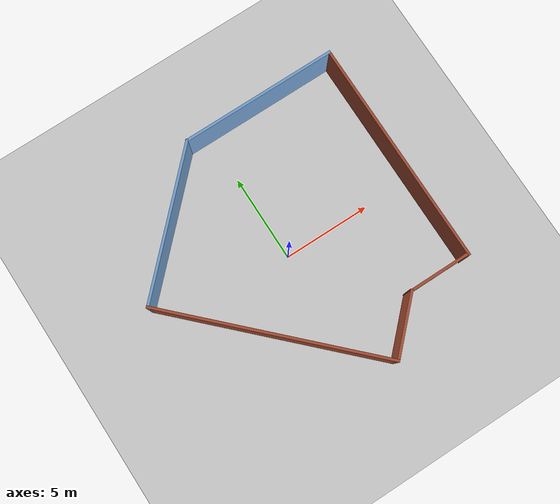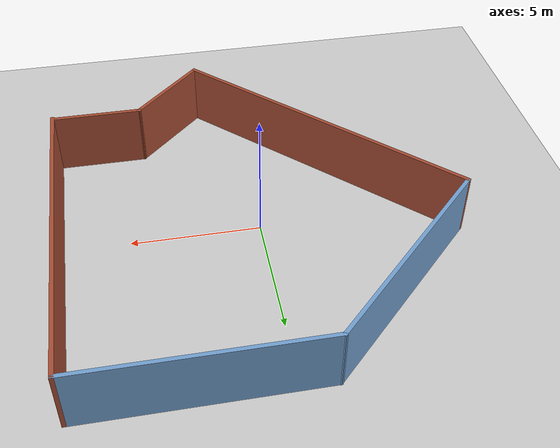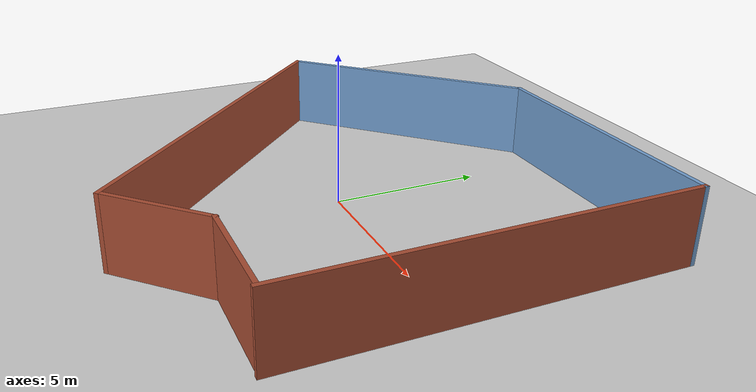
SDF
<sdf version="1.7">
 <world name="default">
  <light name="sun" type="directional">
   <pose>0 0 10 0 -0 0</pose>
   <diffuse>0.8 0.8 0.8 1</diffuse>
   <specular>0.2 0.2 0.2 1</specular>
   <attenuation>
    <range>1000</range>
    <constant>0.9</constant>
    <linear>0.01</linear>
    <quadratic>0.001</quadratic>
   </attenuation>
   <direction>-0.5 0.1 -0.9</direction>
   <spot><inner_angle>0</inner_angle><outer_angle>0</outer_angle><falloff>0</falloff></spot>
  </light>
  <model name="ground_plane">
   <static>1</static>
   <link name="link">
    <collision name="collision">
     <geometry><plane><normal>0 0 1</normal><size>100 100</size></plane></geometry>
     <surface><friction><ode><mu>100</mu><mu2>50</mu2></ode></friction></surface>
    </collision>
    <visual name="visual">
     <cast_shadows>0</cast_shadows>
     <geometry><plane><normal>0 0 1</normal><size>100 100</size></plane></geometry>
     <material>
      <script><uri>file://media/materials/scripts/gazebo.material</uri><name>Gazebo/Grey</name></script>
     </material>
    </visual>
   </link>
  </model>
  <gravity>0 0 -9.8</gravity>
  <magnetic_field>6e-06 2.3e-05 -4.2e-05</magnetic_field>
  <atmosphere type="adiabatic"/>
  <physics type="ode">
   <max_step_size>0.001</max_step_size>
   <real_time_factor>1</real_time_factor>
   <real_time_update_rate>1000</real_time_update_rate>
  </physics>
  <scene><ambient>0.4 0.4 0.4 1</ambient><background>0.7 0.7 0.7 1</background><shadows>1</shadows></scene>
  <spherical_coordinates>
   <surface_model>EARTH_WGS84</surface_model>
   <latitude_deg>0</latitude_deg>
   <longitude_deg>0</longitude_deg>
   <elevation>0</elevation>
   <heading_deg>0</heading_deg>
  </spherical_coordinates>
  <model name="atrium.world">
   <pose>-0.01557 0.004616 0 0 -0 0</pose>
   <link name="Wall_14">
    <collision name="Wall_14_Collision">
     <geometry><box><size>13 0.15 2.5</size></box></geometry>
     <pose>0 0 1.25 0 -0 0</pose>
    </collision>
    <visual name="Wall_14_Visual">
     <pose>0 0 1.25 0 -0 0</pose>
     <geometry><box><size>13 0.15 2.5</size></box></geometry>
     <material>
      <script><uri>file://media/materials/scripts/gazebo.material</uri><name>Gazebo/Bricks</name></script>
      <ambient>1 1 1 1</ambient>
     </material>
     <meta><layer>0</layer></meta>
    </visual>
    <pose>7.56948 1.24711 0 0 -0 1.5708</pose>
   </link>
   <link name="Wall_15">
    <collision name="Wall_15_Collision">
     <geometry><box><size>9 0.15 2.5</size></box></geometry>
     <pose>0 0 1.25 0 -0 0</pose>
    </collision>
    <visual name="Wall_15_Visual">
     <pose>0 0 1.25 0 -0 0</pose>
     <geometry><box><size>9 0.15 2.5</size></box></geometry>
     <material>
      <script><uri>file://media/materials/scripts/gazebo.material</uri><name>Gazebo/Grey</name></script>
      <ambient>0.447059 0.623529 0.811765 1</ambient>
     </material>
     <meta><layer>0</layer></meta>
    </visual>
    <pose>3.14448 7.67211 0 0 -0 3.14159</pose>
   </link>
   <link name="Wall_16">
    <collision name="Wall_16_Collision">
     <geometry><box><size>9 0.15 2.5</size></box></geometry>
     <pose>0 0 1.25 0 -0 0</pose>
    </collision>
    <visual name="Wall_16_Visual">
     <pose>0 0 1.25 0 -0 0</pose>
     <geometry><box><size>9 0.15 2.5</size></box></geometry>
     <material>
      <script><uri>file://media/materials/scripts/gazebo.material</uri><name>Gazebo/Grey</name></script>
      <ambient>0.447059 0.623529 0.811765 1</ambient>
     </material>
     <meta><layer>0</layer></meta>
    </visual>
    <pose>-4.40947 4.54316 0 0 -0 -2.35619</pose>
   </link>
   <link name="Wall_17">
    <collision name="Wall_17_Collision">
     <geometry><box><size>13 0.15 2.5</size></box></geometry>
     <pose>0 0 1.25 0 -0 0</pose>
    </collision>
    <visual name="Wall_17_Visual">
     <pose>0 0 1.25 0 -0 0</pose>
     <geometry><box><size>13 0.15 2.5</size></box></geometry>
     <material>
      <script><uri>file://media/materials/scripts/gazebo.material</uri><name>Gazebo/Bricks</name></script>
      <ambient>1 1 1 1</ambient>
     </material>
     <meta><layer>0</layer></meta>
    </visual>
    <pose>-2.99525 -3.12895 0 0 -0 -0.785398</pose>
   </link>
   <link name="Wall_18">
    <collision name="Wall_18_Collision">
     <geometry><box><size>3.75 0.15 2.5</size></box></geometry>
     <pose>0 0 1.25 0 -0 0</pose>
    </collision>
    <visual name="Wall_18_Visual">
     <pose>0 0 1.25 0 -0 0</pose>
     <geometry><box><size>3.75 0.15 2.5</size></box></geometry>
     <material>
      <script><uri>file://media/materials/scripts/gazebo.material</uri><name>Gazebo/Bricks</name></script>
      <ambient>1 1 1 1</ambient>
     </material>
     <meta><layer>0</layer></meta>
    </visual>
    <pose>2.8207 -6.39932 0 0 -0 0.785398</pose>
   </link>
   <link name="Wall_19">
    <collision name="Wall_19_Collision">
     <geometry><box><size>3.5 0.15 2.5</size></box></geometry>
     <pose>0 0 1.25 0 -0 0</pose>
    </collision>
    <visual name="Wall_19_Visual">
     <pose>0 0 1.25 0 -0 0</pose>
     <geometry><box><size>3.5 0.15 2.5</size></box></geometry>
     <material>
      <script><uri>file://media/materials/scripts/gazebo.material</uri><name>Gazebo/Bricks</name></script>
      <ambient>1 1 1 1</ambient>
     </material>
     <meta><layer>0</layer></meta>
    </visual>
    <pose>5.76849 -5.12652 0 0 -0 0</pose>
   </link>
   <static>1</static>
  </model>
 </world>
</sdf>
